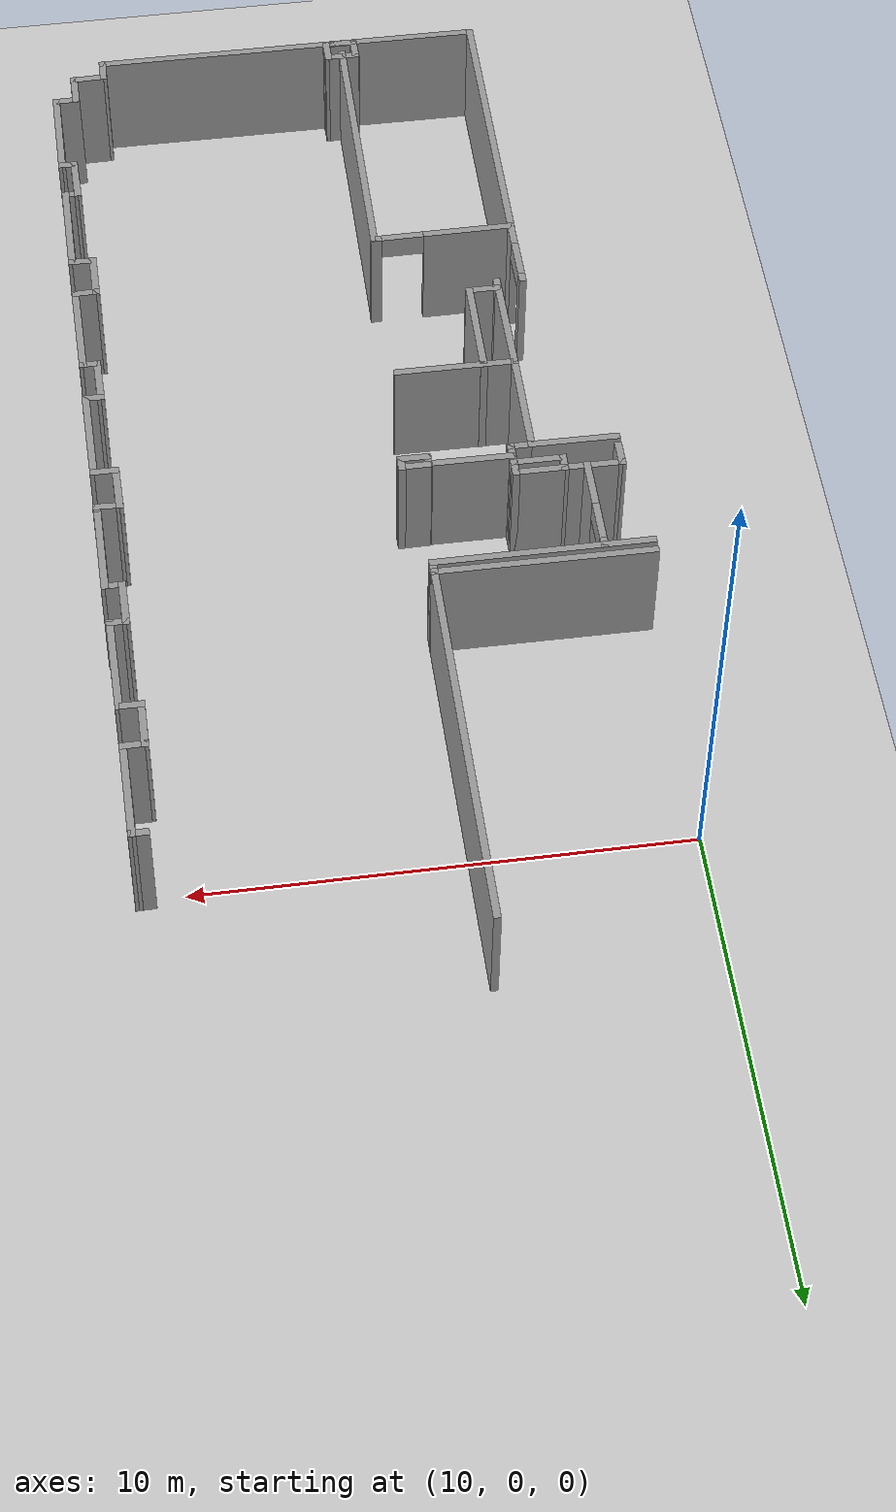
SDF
<sdf version="1.6">
 <world name="default">
  <model name="ground_plane">
   <static>1</static>
   <link name="link">
    <collision name="collision">
     <geometry><plane><normal>0 0 1</normal><size>100 100</size></plane></geometry>
     <surface>
      <contact><collide_bitmask>65535</collide_bitmask></contact>
      <friction><ode><mu>100</mu><mu2>50</mu2></ode></friction>
     </surface>
    </collision>
    <visual name="visual">
     <cast_shadows>0</cast_shadows>
     <geometry><plane><normal>0 0 1</normal><size>100 100</size></plane></geometry>
     <material>
      <script><uri>file://media/materials/scripts/gazebo.material</uri><name>Gazebo/Grey</name></script>
     </material>
    </visual>
   </link>
  </model>
  <model name="Myhal_5th_floor">
   <pose>-0.342666 0.4433 0 0 -0 0</pose>
   <link name="Wall_176">
    <collision name="Wall_176_Collision">
     <geometry><box><size>0.41301 0.15 2.5</size></box></geometry>
     <pose>0 0 1.25 0 -0 0</pose>
    </collision>
    <visual name="Wall_176_Visual">
     <pose>0 0 1.25 0 -0 0</pose>
     <geometry><box><size>0.41301 0.15 2.5</size></box></geometry>
     <material>
      <script><uri>file://media/materials/scripts/gazebo.material</uri><name>Gazebo/Grey</name></script>
      <ambient>1 1 1 1</ambient>
     </material>
     <meta><layer>0</layer></meta>
    </visual>
    <pose>21.1258 -0.328473 0 0 -0 0.019228</pose>
   </link>
   <link name="Wall_177">
    <collision name="Wall_177_Collision">
     <geometry><box><size>2.17279 0.15 2.5</size></box></geometry>
     <pose>0 0 1.25 0 -0 0</pose>
    </collision>
    <visual name="Wall_177_Visual">
     <pose>0 0 1.25 0 -0 0</pose>
     <geometry><box><size>2.17279 0.15 2.5</size></box></geometry>
     <material>
      <script><uri>file://media/materials/scripts/gazebo.material</uri><name>Gazebo/Grey</name></script>
      <ambient>1 1 1 1</ambient>
     </material>
     <meta><layer>0</layer></meta>
    </visual>
    <pose>21.2547 -1.33733 0 0 -0 -1.5733</pose>
   </link>
   <link name="Wall_178">
    <collision name="Wall_178_Collision">
     <geometry><box><size>0.569757 0.15 2.5</size></box></geometry>
     <pose>0 0 1.25 0 -0 0</pose>
    </collision>
    <visual name="Wall_178_Visual">
     <pose>0 0 1.25 0 -0 0</pose>
     <geometry><box><size>0.569757 0.15 2.5</size></box></geometry>
     <material>
      <script><uri>file://media/materials/scripts/gazebo.material</uri><name>Gazebo/Grey</name></script>
      <ambient>1 1 1 1</ambient>
     </material>
     <meta><layer>0</layer></meta>
    </visual>
    <pose>21.0423 -2.35125 0 0 -0 -3.12954</pose>
   </link>
   <link name="Wall_179">
    <collision name="Wall_179_Collision">
     <geometry><box><size>1.09065 0.15 2.5</size></box></geometry>
     <pose>0 0 1.25 0 -0 0</pose>
    </collision>
    <visual name="Wall_179_Visual">
     <pose>0 0 1.25 0 -0 0</pose>
     <geometry><box><size>1.09065 0.15 2.5</size></box></geometry>
     <material>
      <script><uri>file://media/materials/scripts/gazebo.material</uri><name>Gazebo/Grey</name></script>
      <ambient>1 1 1 1</ambient>
     </material>
     <meta><layer>0</layer></meta>
    </visual>
    <pose>20.8274 -2.82408 0 0 -0 -1.58155</pose>
   </link>
   <link name="Wall_180">
    <collision name="Wall_180_Collision">
     <geometry><box><size>0.579841 0.15 2.5</size></box></geometry>
     <pose>0 0 1.25 0 -0 0</pose>
    </collision>
    <visual name="Wall_180_Visual">
     <pose>0 0 1.25 0 -0 0</pose>
     <geometry><box><size>0.579841 0.15 2.5</size></box></geometry>
     <material>
      <script><uri>file://media/materials/scripts/gazebo.material</uri><name>Gazebo/Grey</name></script>
      <ambient>1 1 1 1</ambient>
     </material>
     <meta><layer>0</layer></meta>
    </visual>
    <pose>21.0373 -3.29437 0 0 -0 0</pose>
   </link>
   <link name="Wall_182">
    <collision name="Wall_182_Collision">
     <geometry><box><size>2.19708 0.15 2.5</size></box></geometry>
     <pose>0 0 1.25 0 -0 0</pose>
    </collision>
    <visual name="Wall_182_Visual">
     <pose>0 0 1.25 0 -0 0</pose>
     <geometry><box><size>2.19708 0.15 2.5</size></box></geometry>
     <material>
      <script><uri>file://media/materials/scripts/gazebo.material</uri><name>Gazebo/Grey</name></script>
      <ambient>1 1 1 1</ambient>
     </material>
     <meta><layer>0</layer></meta>
    </visual>
    <pose>21.2565 -4.3179 0 0 -0 -1.56657</pose>
   </link>
   <link name="Wall_183">
    <collision name="Wall_183_Collision">
     <geometry><box><size>0.472232 0.15 2.5</size></box></geometry>
     <pose>0 0 1.25 0 -0 0</pose>
    </collision>
    <visual name="Wall_183_Visual">
     <pose>0 0 1.25 0 -0 0</pose>
     <geometry><box><size>0.472232 0.15 2.5</size></box></geometry>
     <material>
      <script><uri>file://media/materials/scripts/gazebo.material</uri><name>Gazebo/Grey</name></script>
      <ambient>1 1 1 1</ambient>
     </material>
     <meta><layer>0</layer></meta>
    </visual>
    <pose>21.0997 -5.33688 0 0 -0 3.11332</pose>
   </link>
   <link name="Wall_184">
    <collision name="Wall_184_Collision">
     <geometry><box><size>1.07733 0.15 2.5</size></box></geometry>
     <pose>0 0 1.25 0 -0 0</pose>
    </collision>
    <visual name="Wall_184_Visual">
     <pose>0 0 1.25 0 -0 0</pose>
     <geometry><box><size>1.07733 0.15 2.5</size></box></geometry>
     <material>
      <script><uri>file://media/materials/scripts/gazebo.material</uri><name>Gazebo/Grey</name></script>
      <ambient>1 1 1 1</ambient>
     </material>
     <meta><layer>0</layer></meta>
    </visual>
    <pose>20.9395 -5.79584 0 0 -0 -1.56903</pose>
   </link>
   <link name="Wall_185">
    <collision name="Wall_185_Collision">
     <geometry><box><size>0.492248 0.15 2.5</size></box></geometry>
     <pose>0 0 1.25 0 -0 0</pose>
    </collision>
    <visual name="Wall_185_Visual">
     <pose>0 0 1.25 0 -0 0</pose>
     <geometry><box><size>0.492248 0.15 2.5</size></box></geometry>
     <material>
      <script><uri>file://media/materials/scripts/gazebo.material</uri><name>Gazebo/Grey</name></script>
      <ambient>1 1 1 1</ambient>
     </material>
     <meta><layer>0</layer></meta>
    </visual>
    <pose>21.1114 -6.26108 0 0 -0 -0.010061</pose>
   </link>
   <link name="Wall_187">
    <collision name="Wall_187_Collision">
     <geometry><box><size>1.99581 0.15 2.5</size></box></geometry>
     <pose>0 0 1.25 0 -0 0</pose>
    </collision>
    <visual name="Wall_187_Visual">
     <pose>0 0 1.25 0 -0 0</pose>
     <geometry><box><size>1.99581 0.15 2.5</size></box></geometry>
     <material>
      <script><uri>file://media/materials/scripts/gazebo.material</uri><name>Gazebo/Grey</name></script>
      <ambient>1 1 1 1</ambient>
     </material>
     <meta><layer>0</layer></meta>
    </visual>
    <pose>21.28 -7.18569 0 0 -0 -1.57354</pose>
   </link>
   <link name="Wall_188">
    <collision name="Wall_188_Collision">
     <geometry><box><size>0.352341 0.15 2.5</size></box></geometry>
     <pose>0 0 1.25 0 -0 0</pose>
    </collision>
    <visual name="Wall_188_Visual">
     <pose>0 0 1.25 0 -0 0</pose>
     <geometry><box><size>0.352341 0.15 2.5</size></box></geometry>
     <material>
      <script><uri>file://media/materials/scripts/gazebo.material</uri><name>Gazebo/Grey</name></script>
      <ambient>1 1 1 1</ambient>
     </material>
     <meta><layer>0</layer></meta>
    </visual>
    <pose>21.28 -8.20973 0 0 -0 -1.5458</pose>
   </link>
   <link name="Wall_189">
    <collision name="Wall_189_Collision">
     <geometry><box><size>0.610876 0.15 2.5</size></box></geometry>
     <pose>0 0 1.25 0 -0 0</pose>
    </collision>
    <visual name="Wall_189_Visual">
     <pose>0 0 1.25 0 -0 0</pose>
     <geometry><box><size>0.610876 0.15 2.5</size></box></geometry>
     <material>
      <script><uri>file://media/materials/scripts/gazebo.material</uri><name>Gazebo/Grey</name></script>
      <ambient>1 1 1 1</ambient>
     </material>
     <meta><layer>0</layer></meta>
    </visual>
    <pose>21.0524 -8.30328 0 0 -0 3.10864</pose>
   </link>
   <link name="Wall_190">
    <collision name="Wall_190_Collision">
     <geometry><box><size>1.08049 0.15 2.5</size></box></geometry>
     <pose>0 0 1.25 0 -0 0</pose>
    </collision>
    <visual name="Wall_190_Visual">
     <pose>0 0 1.25 0 -0 0</pose>
     <geometry><box><size>1.08049 0.15 2.5</size></box></geometry>
     <material>
      <script><uri>file://media/materials/scripts/gazebo.material</uri><name>Gazebo/Grey</name></script>
      <ambient>1 1 1 1</ambient>
     </material>
     <meta><layer>0</layer></meta>
    </visual>
    <pose>20.8249 -8.76093 0 0 -0 -1.56536</pose>
   </link>
   <link name="Wall_191">
    <collision name="Wall_191_Collision">
     <geometry><box><size>0.595011 0.15 2.5</size></box></geometry>
     <pose>0 0 1.25 0 -0 0</pose>
    </collision>
    <visual name="Wall_191_Visual">
     <pose>0 0 1.25 0 -0 0</pose>
     <geometry><box><size>0.595011 0.15 2.5</size></box></geometry>
     <material>
      <script><uri>file://media/materials/scripts/gazebo.material</uri><name>Gazebo/Grey</name></script>
      <ambient>1 1 1 1</ambient>
     </material>
     <meta><layer>0</layer></meta>
    </visual>
    <pose>21.0499 -9.22617 0 0 -0 0</pose>
   </link>
   <link name="Wall_193">
    <collision name="Wall_193_Collision">
     <geometry><box><size>2.16773 0.15 2.5</size></box></geometry>
     <pose>0 0 1.25 0 -0 0</pose>
    </collision>
    <visual name="Wall_193_Visual">
     <pose>0 0 1.25 0 -0 0</pose>
     <geometry><box><size>2.16773 0.15 2.5</size></box></geometry>
     <material>
      <script><uri>file://media/materials/scripts/gazebo.material</uri><name>Gazebo/Grey</name></script>
      <ambient>1 1 1 1</ambient>
     </material>
     <meta><layer>0</layer></meta>
    </visual>
    <pose>21.2749 -10.235 0 0 -0 -1.56829</pose>
   </link>
   <link name="Wall_194">
    <collision name="Wall_194_Collision">
     <geometry><box><size>0.463572 0.15 2.5</size></box></geometry>
     <pose>0 0 1.25 0 -0 0</pose>
    </collision>
    <visual name="Wall_194_Visual">
     <pose>0 0 1.25 0 -0 0</pose>
     <geometry><box><size>0.463572 0.15 2.5</size></box></geometry>
     <material>
      <script><uri>file://media/materials/scripts/gazebo.material</uri><name>Gazebo/Grey</name></script>
      <ambient>1 1 1 1</ambient>
     </material>
     <meta><layer>0</layer></meta>
    </visual>
    <pose>21.1207 -11.2414 0 0 -0 3.12547</pose>
   </link>
   <link name="Wall_195">
    <collision name="Wall_195_Collision">
     <geometry><box><size>1.08555 0.15 2.5</size></box></geometry>
     <pose>0 0 1.25 0 -0 0</pose>
    </collision>
    <visual name="Wall_195_Visual">
     <pose>0 0 1.25 0 -0 0</pose>
     <geometry><box><size>1.08555 0.15 2.5</size></box></geometry>
     <material>
      <script><uri>file://media/materials/scripts/gazebo.material</uri><name>Gazebo/Grey</name></script>
      <ambient>1 1 1 1</ambient>
     </material>
     <meta><layer>0</layer></meta>
    </visual>
    <pose>20.9665 -11.7066 0 0 -0 -1.56539</pose>
   </link>
   <link name="Wall_197">
    <collision name="Wall_197_Collision">
     <geometry><box><size>0.443347 0.15 2.5</size></box></geometry>
     <pose>0 0 1.25 0 -0 0</pose>
    </collision>
    <visual name="Wall_197_Visual">
     <pose>0 0 1.25 0 -0 0</pose>
     <geometry><box><size>0.443347 0.15 2.5</size></box></geometry>
     <material>
      <script><uri>file://media/materials/scripts/gazebo.material</uri><name>Gazebo/Grey</name></script>
      <ambient>1 1 1 1</ambient>
     </material>
     <meta><layer>0</layer></meta>
    </visual>
    <pose>21.1156 -12.182 0 0 -0 -0.01724</pose>
   </link>
   <link name="Wall_200">
    <collision name="Wall_200_Collision">
     <geometry><box><size>2.18308 0.15 2.5</size></box></geometry>
     <pose>0 0 1.25 0 -0 0</pose>
    </collision>
    <visual name="Wall_200_Visual">
     <pose>0 0 1.25 0 -0 0</pose>
     <geometry><box><size>2.18308 0.15 2.5</size></box></geometry>
     <material>
      <script><uri>file://media/materials/scripts/gazebo.material</uri><name>Gazebo/Grey</name></script>
      <ambient>1 1 1 1</ambient>
     </material>
     <meta><layer>0</layer></meta>
    </visual>
    <pose>21.2649 -13.201 0 0 -0 -1.5682</pose>
   </link>
   <link name="Wall_201">
    <collision name="Wall_201_Collision">
     <geometry><box><size>0.586707 0.15 2.5</size></box></geometry>
     <pose>0 0 1.25 0 -0 0</pose>
    </collision>
    <visual name="Wall_201_Visual">
     <pose>0 0 1.25 0 -0 0</pose>
     <geometry><box><size>0.586707 0.15 2.5</size></box></geometry>
     <material>
      <script><uri>file://media/materials/scripts/gazebo.material</uri><name>Gazebo/Grey</name></script>
      <ambient>1 1 1 1</ambient>
     </material>
     <meta><layer>0</layer></meta>
    </visual>
    <pose>21.0493 -14.2221 0 0 -0 -3.12062</pose>
   </link>
   <link name="Wall_202">
    <collision name="Wall_202_Collision">
     <geometry><box><size>1.07194 0.15 2.5</size></box></geometry>
     <pose>0 0 1.25 0 -0 0</pose>
    </collision>
    <visual name="Wall_202_Visual">
     <pose>0 0 1.25 0 -0 0</pose>
     <geometry><box><size>1.07194 0.15 2.5</size></box></geometry>
     <material>
      <script><uri>file://media/materials/scripts/gazebo.material</uri><name>Gazebo/Grey</name></script>
      <ambient>1 1 1 1</ambient>
     </material>
     <meta><layer>0</layer></meta>
    </visual>
    <pose>20.828 -14.6877 0 0 -0 -1.57742</pose>
   </link>
   <link name="Wall_203">
    <collision name="Wall_203_Collision">
     <geometry><box><size>0.592476 0.15 2.5</size></box></geometry>
     <pose>0 0 1.25 0 -0 0</pose>
    </collision>
    <visual name="Wall_203_Visual">
     <pose>0 0 1.25 0 -0 0</pose>
     <geometry><box><size>0.592476 0.15 2.5</size></box></geometry>
     <material>
      <script><uri>file://media/materials/scripts/gazebo.material</uri><name>Gazebo/Grey</name></script>
      <ambient>1 1 1 1</ambient>
     </material>
     <meta><layer>0</layer></meta>
    </visual>
    <pose>21.0461 -15.1508 0 0 -0 -0.009693</pose>
   </link>
   <link name="Wall_205">
    <collision name="Wall_205_Collision">
     <geometry><box><size>2.18797 0.15 2.5</size></box></geometry>
     <pose>0 0 1.25 0 -0 0</pose>
    </collision>
    <visual name="Wall_205_Visual">
     <pose>0 0 1.25 0 -0 0</pose>
     <geometry><box><size>2.18797 0.15 2.5</size></box></geometry>
     <material>
      <script><uri>file://media/materials/scripts/gazebo.material</uri><name>Gazebo/Grey</name></script>
      <ambient>1 1 1 1</ambient>
     </material>
     <meta><layer>0</layer></meta>
    </visual>
    <pose>21.2623 -16.1719 0 0 -0 -1.57576</pose>
   </link>
   <link name="Wall_206">
    <collision name="Wall_206_Collision">
     <geometry><box><size>0.412961 0.15 2.5</size></box></geometry>
     <pose>0 0 1.25 0 -0 0</pose>
    </collision>
    <visual name="Wall_206_Visual">
     <pose>0 0 1.25 0 -0 0</pose>
     <geometry><box><size>0.412961 0.15 2.5</size></box></geometry>
     <material>
      <script><uri>file://media/materials/scripts/gazebo.material</uri><name>Gazebo/Grey</name></script>
      <ambient>1 1 1 1</ambient>
     </material>
     <meta><layer>0</layer></meta>
    </visual>
    <pose>21.1258 -17.1909 0 0 -0 3.14159</pose>
   </link>
   <link name="Wall_207">
    <collision name="Wall_207_Collision">
     <geometry><box><size>1.06031 0.15 2.5</size></box></geometry>
     <pose>0 0 1.25 0 -0 0</pose>
    </collision>
    <visual name="Wall_207_Visual">
     <pose>0 0 1.25 0 -0 0</pose>
     <geometry><box><size>1.06031 0.15 2.5</size></box></geometry>
     <material>
      <script><uri>file://media/materials/scripts/gazebo.material</uri><name>Gazebo/Grey</name></script>
      <ambient>1 1 1 1</ambient>
     </material>
     <meta><layer>0</layer></meta>
    </visual>
    <pose>20.9993 -17.646 0 0 -0 -1.55969</pose>
   </link>
   <link name="Wall_208">
    <collision name="Wall_208_Collision">
     <geometry><box><size>0.412961 0.15 2.5</size></box></geometry>
     <pose>0 0 1.25 0 -0 0</pose>
    </collision>
    <visual name="Wall_208_Visual">
     <pose>0 0 1.25 0 -0 0</pose>
     <geometry><box><size>0.412961 0.15 2.5</size></box></geometry>
     <material>
      <script><uri>file://media/materials/scripts/gazebo.material</uri><name>Gazebo/Grey</name></script>
      <ambient>1 1 1 1</ambient>
     </material>
     <meta><layer>0</layer></meta>
    </visual>
    <pose>21.1359 -18.1011 0 0 -0 0</pose>
   </link>
   <link name="Wall_213">
    <collision name="Wall_213_Collision">
     <geometry><box><size>2.16321 0.15 2.5</size></box></geometry>
     <pose>0 0 1.25 0 -0 0</pose>
    </collision>
    <visual name="Wall_213_Visual">
     <pose>0 0 1.25 0 -0 0</pose>
     <geometry><box><size>2.16321 0.15 2.5</size></box></geometry>
     <material>
      <script><uri>file://media/materials/scripts/gazebo.material</uri><name>Gazebo/Grey</name></script>
      <ambient>1 1 1 1</ambient>
     </material>
     <meta><layer>0</layer></meta>
    </visual>
    <pose>21.2582 -19.1077 0 0 -0 -1.57988</pose>
   </link>
   <link name="Wall_214">
    <collision name="Wall_214_Collision">
     <geometry><box><size>0.586875 0.15 2.5</size></box></geometry>
     <pose>0 0 1.25 0 -0 0</pose>
    </collision>
    <visual name="Wall_214_Visual">
     <pose>0 0 1.25 0 -0 0</pose>
     <geometry><box><size>0.586875 0.15 2.5</size></box></geometry>
     <material>
      <script><uri>file://media/materials/scripts/gazebo.material</uri><name>Gazebo/Grey</name></script>
      <ambient>1 1 1 1</ambient>
     </material>
     <meta><layer>0</layer></meta>
    </visual>
    <pose>21.0306 -20.1165 0 0 -0 -3.13108</pose>
   </link>
   <link name="Wall_215">
    <collision name="Wall_215_Collision">
     <geometry><box><size>0.792232 0.15 2.5</size></box></geometry>
     <pose>0 0 1.25 0 -0 0</pose>
    </collision>
    <visual name="Wall_215_Visual">
     <pose>0 0 1.25 0 -0 0</pose>
     <geometry><box><size>0.792232 0.15 2.5</size></box></geometry>
     <material>
      <script><uri>file://media/materials/scripts/gazebo.material</uri><name>Gazebo/Grey</name></script>
      <ambient>1 1 1 1</ambient>
     </material>
     <meta><layer>0</layer></meta>
    </visual>
    <pose>20.8122 -20.445 0 0 -0 -1.5708</pose>
   </link>
   <link name="Wall_216">
    <collision name="Wall_216_Collision">
     <geometry><box><size>0.807481 0.15 2.5</size></box></geometry>
     <pose>0 0 1.25 0 -0 0</pose>
    </collision>
    <visual name="Wall_216_Visual">
     <pose>0 0 1.25 0 -0 0</pose>
     <geometry><box><size>0.807481 0.15 2.5</size></box></geometry>
     <material>
      <script><uri>file://media/materials/scripts/gazebo.material</uri><name>Gazebo/Grey</name></script>
      <ambient>1 1 1 1</ambient>
     </material>
     <meta><layer>0</layer></meta>
    </visual>
    <pose>20.4835 -20.7661 0 0 -0 -3.12621</pose>
   </link>
   <link name="Wall_217">
    <collision name="Wall_217_Collision">
     <geometry><box><size>0.561005 0.15 2.5</size></box></geometry>
     <pose>0 0 1.25 0 -0 0</pose>
    </collision>
    <visual name="Wall_217_Visual">
     <pose>0 0 1.25 0 -0 0</pose>
     <geometry><box><size>0.561005 0.15 2.5</size></box></geometry>
     <material>
      <script><uri>file://media/materials/scripts/gazebo.material</uri><name>Gazebo/Grey</name></script>
      <ambient>1 1 1 1</ambient>
     </material>
     <meta><layer>0</layer></meta>
    </visual>
    <pose>20.1492 -20.9766 0 0 -0 -1.59832</pose>
   </link>
   <link name="Wall_221">
    <collision name="Wall_221_Collision">
     <geometry><box><size>5.98789 0.15 2.5</size></box></geometry>
     <pose>0 0 1.25 0 -0 0</pose>
    </collision>
    <visual name="Wall_221_Visual">
     <pose>0 0 1.25 0 -0 0</pose>
     <geometry><box><size>5.98789 0.15 2.5</size></box></geometry>
     <material>
      <script><uri>file://media/materials/scripts/gazebo.material</uri><name>Gazebo/Grey</name></script>
      <ambient>1 1 1 1</ambient>
     </material>
     <meta><layer>0</layer></meta>
    </visual>
    <pose>14.8096 -17.9095 0 0 -0 -1.57624</pose>
   </link>
   <link name="Wall_229">
    <collision name="Wall_229_Collision">
     <geometry><box><size>0.735565 0.15 2.5</size></box></geometry>
     <pose>0 0 1.25 0 -0 0</pose>
    </collision>
    <visual name="Wall_229_Visual">
     <pose>0 0 1.25 0 -0 0</pose>
     <geometry><box><size>0.735565 0.15 2.5</size></box></geometry>
     <material>
      <script><uri>file://media/materials/scripts/gazebo.material</uri><name>Gazebo/Grey</name></script>
      <ambient>1 1 1 1</ambient>
     </material>
     <meta><layer>0</layer></meta>
    </visual>
    <pose>14.805 -21.1763 0 0 -0 -0.00974</pose>
   </link>
   <link name="Wall_234">
    <collision name="Wall_234_Collision">
     <geometry><box><size>5.20354 0.15 2.5</size></box></geometry>
     <pose>0 0 1.25 0 -0 0</pose>
    </collision>
    <visual name="Wall_234_Visual">
     <pose>0 0 1.25 0 -0 0</pose>
     <geometry><box><size>5.20354 0.15 2.5</size></box></geometry>
     <material>
      <script><uri>file://media/materials/scripts/gazebo.material</uri><name>Gazebo/Grey</name></script>
      <ambient>1 1 1 1</ambient>
     </material>
     <meta><layer>0</layer></meta>
    </visual>
    <pose>17.6167 -21.1845 0 0 -0 -0.000995</pose>
   </link>
   <link name="Wall_236">
    <collision name="Wall_236_Collision">
     <geometry><box><size>3.38329 0.15 2.5</size></box></geometry>
     <pose>0 0 1.25 0 -0 0</pose>
    </collision>
    <visual name="Wall_236_Visual">
     <pose>0 0 1.25 0 -0 0</pose>
     <geometry><box><size>3.38329 0.15 2.5</size></box></geometry>
     <material>
      <script><uri>file://media/materials/scripts/gazebo.material</uri><name>Gazebo/Grey</name></script>
      <ambient>1 1 1 1</ambient>
     </material>
     <meta><layer>0</layer></meta>
    </visual>
    <pose>13.4733 -21.177 0 0 -0 3.13848</pose>
   </link>
   <link name="Wall_238">
    <collision name="Wall_238_Collision">
     <geometry><box><size>6.30944 0.15 2.5</size></box></geometry>
     <pose>0 0 1.25 0 -0 0</pose>
    </collision>
    <visual name="Wall_238_Visual">
     <pose>0 0 1.25 0 -0 0</pose>
     <geometry><box><size>6.30944 0.15 2.5</size></box></geometry>
     <material>
      <script><uri>file://media/materials/scripts/gazebo.material</uri><name>Gazebo/Grey</name></script>
      <ambient>1 1 1 1</ambient>
     </material>
     <meta><layer>0</layer></meta>
    </visual>
    <pose>11.8618 -18.0923 0 0 -0 1.56913</pose>
   </link>
   <link name="Wall_239">
    <pose>13.3529 -14.9949 0 0 -0 0.007421</pose>
    <visual name="Wall_239_Visual_0">
     <pose>-0.571247 0 1.25 0 -0 0</pose>
     <geometry><box><size>1.96615 0.15 2.5</size></box></geometry>
     <material>
      <script><uri>file://media/materials/scripts/gazebo.material</uri><name>Gazebo/Grey</name></script>
      <ambient>1 1 1 1</ambient>
     </material>
     <meta><layer>0</layer></meta>
    </visual>
    <collision name="Wall_239_Collision_0">
     <geometry><box><size>1.96615 0.15 2.5</size></box></geometry>
     <pose>-0.571247 0 1.25 0 -0 0</pose>
    </collision>
    <visual name="Wall_239_Visual_1">
     <pose>1.43308 0 1.25 0 -0 0</pose>
     <geometry><box><size>0.242494 0.15 2.5</size></box></geometry>
     <material>
      <script><uri>file://media/materials/scripts/gazebo.material</uri><name>Gazebo/Grey</name></script>
      <ambient>1 1 1 1</ambient>
     </material>
     <meta><layer>0</layer></meta>
    </visual>
    <collision name="Wall_239_Collision_1">
     <geometry><box><size>0.242494 0.15 2.5</size></box></geometry>
     <pose>1.43308 0 1.25 0 -0 0</pose>
    </collision>
    <visual name="Wall_239_Visual_2">
     <pose>0.861829 0 2.25 0 -0 0</pose>
     <geometry><box><size>0.9 0.15 0.5</size></box></geometry>
     <material>
      <script><uri>file://media/materials/scripts/gazebo.material</uri><name>Gazebo/Grey</name></script>
      <ambient>1 1 1 1</ambient>
     </material>
     <meta><layer>0</layer></meta>
    </visual>
    <collision name="Wall_239_Collision_2">
     <geometry><box><size>0.9 0.15 0.5</size></box></geometry>
     <pose>0.861829 0 2.25 0 -0 0</pose>
    </collision>
   </link>
   <link name="Wall_276">
    <collision name="Wall_276_Collision">
     <geometry><box><size>0.602555 0.15 2.5</size></box></geometry>
     <pose>0 0 1.25 0 -0 0</pose>
    </collision>
    <visual name="Wall_276_Visual">
     <pose>0 0 1.25 0 -0 0</pose>
     <geometry><box><size>0.602555 0.15 2.5</size></box></geometry>
     <material>
      <script><uri>file://media/materials/scripts/gazebo.material</uri><name>Gazebo/Grey</name></script>
      <ambient>1 1 1 1</ambient>
     </material>
     <meta><layer>0</layer></meta>
    </visual>
    <pose>10.6578 -8.33297 0 0 -0 1.5708</pose>
   </link>
   <link name="Wall_277">
    <collision name="Wall_277_Collision">
     <geometry><box><size>1.32163 0.15 2.5</size></box></geometry>
     <pose>0 0 1.25 0 -0 0</pose>
    </collision>
    <visual name="Wall_277_Visual">
     <pose>0 0 1.25 0 -0 0</pose>
     <geometry><box><size>1.32163 0.15 2.5</size></box></geometry>
     <material>
      <script><uri>file://media/materials/scripts/gazebo.material</uri><name>Gazebo/Grey</name></script>
      <ambient>1 1 1 1</ambient>
     </material>
     <meta><layer>0</layer></meta>
    </visual>
    <pose>11.2436 -8.10921 0 0 -0 -0.004292</pose>
   </link>
   <link name="Wall_278">
    <collision name="Wall_278_Collision">
     <geometry><box><size>1.15066 0.15 2.5</size></box></geometry>
     <pose>0 0 1.25 0 -0 0</pose>
    </collision>
    <visual name="Wall_278_Visual">
     <pose>0 0 1.25 0 -0 0</pose>
     <geometry><box><size>1.15066 0.15 2.5</size></box></geometry>
     <material>
      <script><uri>file://media/materials/scripts/gazebo.material</uri><name>Gazebo/Grey</name></script>
      <ambient>1 1 1 1</ambient>
     </material>
     <meta><layer>0</layer></meta>
    </visual>
    <pose>12.3298 -8.11172 0 0 -0 0</pose>
   </link>
   <link name="Wall_279">
    <collision name="Wall_279_Collision">
     <geometry><box><size>0.426562 0.15 2.5</size></box></geometry>
     <pose>0 0 1.25 0 -0 0</pose>
    </collision>
    <visual name="Wall_279_Visual">
     <pose>0 0 1.25 0 -0 0</pose>
     <geometry><box><size>0.426562 0.15 2.5</size></box></geometry>
     <material>
      <script><uri>file://media/materials/scripts/gazebo.material</uri><name>Gazebo/Grey</name></script>
      <ambient>1 1 1 1</ambient>
     </material>
     <meta><layer>0</layer></meta>
    </visual>
    <pose>12.8301 -8.25 0 0 -0 -1.5708</pose>
   </link>
   <link name="Wall_280">
    <collision name="Wall_280_Collision">
     <geometry><box><size>0.320965 0.15 2.5</size></box></geometry>
     <pose>0 0 1.25 0 -0 0</pose>
    </collision>
    <visual name="Wall_280_Visual">
     <pose>0 0 1.25 0 -0 0</pose>
     <geometry><box><size>0.320965 0.15 2.5</size></box></geometry>
     <material>
      <script><uri>file://media/materials/scripts/gazebo.material</uri><name>Gazebo/Grey</name></script>
      <ambient>1 1 1 1</ambient>
     </material>
     <meta><layer>0</layer></meta>
    </visual>
    <pose>12.8301 -8.47377 0 0 -0 -1.5708</pose>
   </link>
   <link name="Wall_281">
    <collision name="Wall_281_Collision">
     <geometry><box><size>0.396391 0.15 2.5</size></box></geometry>
     <pose>0 0 1.25 0 -0 0</pose>
    </collision>
    <visual name="Wall_281_Visual">
     <pose>0 0 1.25 0 -0 0</pose>
     <geometry><box><size>0.396391 0.15 2.5</size></box></geometry>
     <material>
      <script><uri>file://media/materials/scripts/gazebo.material</uri><name>Gazebo/Grey</name></script>
      <ambient>1 1 1 1</ambient>
     </material>
     <meta><layer>0</layer></meta>
    </visual>
    <pose>12.8301 -8.68244 0 0 -0 -1.5708</pose>
   </link>
   <link name="Wall_282">
    <collision name="Wall_282_Collision">
     <geometry><box><size>0.577532 0.15 2.5</size></box></geometry>
     <pose>0 0 1.25 0 -0 0</pose>
    </collision>
    <visual name="Wall_282_Visual">
     <pose>0 0 1.25 0 -0 0</pose>
     <geometry><box><size>0.577532 0.15 2.5</size></box></geometry>
     <material>
      <script><uri>file://media/materials/scripts/gazebo.material</uri><name>Gazebo/Grey</name></script>
      <ambient>1 1 1 1</ambient>
     </material>
     <meta><layer>0</layer></meta>
    </visual>
    <pose>12.6164 -8.80815 0 0 -0 -3.12983</pose>
   </link>
   <link name="Wall_283">
    <collision name="Wall_283_Collision">
     <geometry><box><size>1.89488 0.15 2.5</size></box></geometry>
     <pose>0 0 1.25 0 -0 0</pose>
    </collision>
    <visual name="Wall_283_Visual">
     <pose>0 0 1.25 0 -0 0</pose>
     <geometry><box><size>1.89488 0.15 2.5</size></box></geometry>
     <material>
      <script><uri>file://media/materials/scripts/gazebo.material</uri><name>Gazebo/Grey</name></script>
      <ambient>1 1 1 1</ambient>
     </material>
     <meta><layer>0</layer></meta>
    </visual>
    <pose>11.5302 -8.80564 0 0 -0 3.13583</pose>
   </link>
   <link name="Wall_286">
    <collision name="Wall_286_Collision">
     <geometry><box><size>0.42158 0.15 2.5</size></box></geometry>
     <pose>0 0 1.25 0 -0 0</pose>
    </collision>
    <visual name="Wall_286_Visual">
     <pose>0 0 1.25 0 -0 0</pose>
     <geometry><box><size>0.42158 0.15 2.5</size></box></geometry>
     <material>
      <script><uri>file://media/materials/scripts/gazebo.material</uri><name>Gazebo/Grey</name></script>
      <ambient>1 1 1 1</ambient>
     </material>
     <meta><layer>0</layer></meta>
    </visual>
    <pose>11.8269 -8.24749 0 0 -0 -1.58931</pose>
   </link>
   <link name="Wall_287">
    <collision name="Wall_287_Collision">
     <geometry><box><size>1.15599 0.15 2.5</size></box></geometry>
     <pose>0 0 1.25 0 -0 0</pose>
    </collision>
    <visual name="Wall_287_Visual">
     <pose>0 0 1.25 0 -0 0</pose>
     <geometry><box><size>1.15599 0.15 2.5</size></box></geometry>
     <material>
      <script><uri>file://media/materials/scripts/gazebo.material</uri><name>Gazebo/Grey</name></script>
      <ambient>1 1 1 1</ambient>
     </material>
     <meta><layer>0</layer></meta>
    </visual>
    <pose>12.3272 -8.38326 0 0 -0 0</pose>
   </link>
   <link name="Wall_292">
    <collision name="Wall_292_Collision">
     <geometry><box><size>1.85777 0.15 2.5</size></box></geometry>
     <pose>0 0 1.25 0 -0 0</pose>
    </collision>
    <visual name="Wall_292_Visual">
     <pose>0 0 1.25 0 -0 0</pose>
     <geometry><box><size>1.85777 0.15 2.5</size></box></geometry>
     <material>
      <script><uri>file://media/materials/scripts/gazebo.material</uri><name>Gazebo/Grey</name></script>
      <ambient>1 1 1 1</ambient>
     </material>
     <meta><layer>0</layer></meta>
    </visual>
    <pose>13.694 -8.56441 0 0 -0 -0.00505</pose>
   </link>
   <link name="Wall_294">
    <collision name="Wall_294_Collision">
     <geometry><box><size>0.342968 0.15 2.5</size></box></geometry>
     <pose>0 0 1.25 0 -0 0</pose>
    </collision>
    <visual name="Wall_294_Visual">
     <pose>0 0 1.25 0 -0 0</pose>
     <geometry><box><size>0.342968 0.15 2.5</size></box></geometry>
     <material>
      <script><uri>file://media/materials/scripts/gazebo.material</uri><name>Gazebo/Grey</name></script>
      <ambient>1 1 1 1</ambient>
     </material>
     <meta><layer>0</layer></meta>
    </visual>
    <pose>14.5464 -8.66503 0 0 -0 -1.58572</pose>
   </link>
   <link name="Wall_295">
    <collision name="Wall_295_Collision">
     <geometry><box><size>0.696258 0.15 2.5</size></box></geometry>
     <pose>0 0 1.25 0 -0 0</pose>
    </collision>
    <visual name="Wall_295_Visual">
     <pose>0 0 1.25 0 -0 0</pose>
     <geometry><box><size>0.696258 0.15 2.5</size></box></geometry>
     <material>
      <script><uri>file://media/materials/scripts/gazebo.material</uri><name>Gazebo/Grey</name></script>
      <ambient>1 1 1 1</ambient>
     </material>
     <meta><layer>0</layer></meta>
    </visual>
    <pose>14.8181 -8.76278 0 0 -0 -0.005263</pose>
   </link>
   <link name="Wall_296">
    <collision name="Wall_296_Collision">
     <geometry><box><size>0.373527 0.15 2.5</size></box></geometry>
     <pose>0 0 1.25 0 -0 0</pose>
    </collision>
    <visual name="Wall_296_Visual">
     <pose>0 0 1.25 0 -0 0</pose>
     <geometry><box><size>0.373527 0.15 2.5</size></box></geometry>
     <material>
      <script><uri>file://media/materials/scripts/gazebo.material</uri><name>Gazebo/Grey</name></script>
      <ambient>1 1 1 1</ambient>
     </material>
     <meta><layer>0</layer></meta>
    </visual>
    <pose>15.0923 -8.65246 0 0 -0 1.56116</pose>
   </link>
   <link name="Wall_297">
    <collision name="Wall_297_Collision">
     <geometry><box><size>0.676156 0.15 2.5</size></box></geometry>
     <pose>0 0 1.25 0 -0 0</pose>
    </collision>
    <visual name="Wall_297_Visual">
     <pose>0 0 1.25 0 -0 0</pose>
     <geometry><box><size>0.676156 0.15 2.5</size></box></geometry>
     <material>
      <script><uri>file://media/materials/scripts/gazebo.material</uri><name>Gazebo/Grey</name></script>
      <ambient>1 1 1 1</ambient>
     </material>
     <meta><layer>0</layer></meta>
    </visual>
    <pose>14.8303 -8.54861 0 0 -0 -3.13066</pose>
   </link>
   <link name="Wall_300">
    <collision name="Wall_300_Collision">
     <geometry><box><size>2.44852 0.15 2.5</size></box></geometry>
     <pose>0 0 1.25 0 -0 0</pose>
    </collision>
    <visual name="Wall_300_Visual">
     <pose>0 0 1.25 0 -0 0</pose>
     <geometry><box><size>2.44852 0.15 2.5</size></box></geometry>
     <material>
      <script><uri>file://media/materials/scripts/gazebo.material</uri><name>Gazebo/Grey</name></script>
      <ambient>1 1 1 1</ambient>
     </material>
     <meta><layer>0</layer></meta>
    </visual>
    <pose>12.3981 -9.95992 0 0 -0 1.56684</pose>
   </link>
   <link name="Wall_302">
    <collision name="Wall_302_Collision">
     <geometry><box><size>2.46231 0.15 2.5</size></box></geometry>
     <pose>0 0 1.25 0 -0 0</pose>
    </collision>
    <visual name="Wall_302_Visual">
     <pose>0 0 1.25 0 -0 0</pose>
     <geometry><box><size>2.46231 0.15 2.5</size></box></geometry>
     <material>
      <script><uri>file://media/materials/scripts/gazebo.material</uri><name>Gazebo/Grey</name></script>
      <ambient>1 1 1 1</ambient>
     </material>
     <meta><layer>0</layer></meta>
    </visual>
    <pose>12.4039 -12.2653 0 0 -0 -1.56185</pose>
   </link>
   <link name="Wall_305">
    <collision name="Wall_305_Collision">
     <geometry><box><size>2.59862 0.15 2.5</size></box></geometry>
     <pose>0 0 1.25 0 -0 0</pose>
    </collision>
    <visual name="Wall_305_Visual">
     <pose>0 0 1.25 0 -0 0</pose>
     <geometry><box><size>2.59862 0.15 2.5</size></box></geometry>
     <material>
      <script><uri>file://media/materials/scripts/gazebo.material</uri><name>Gazebo/Grey</name></script>
      <ambient>1 1 1 1</ambient>
     </material>
     <meta><layer>0</layer></meta>
    </visual>
    <pose>13.6179 -11.1135 0 0 -0 -0.003571</pose>
   </link>
   <link name="Wall_307">
    <collision name="Wall_307_Collision">
     <geometry><box><size>2.27753 0.15 2.5</size></box></geometry>
     <pose>0 0 1.25 0 -0 0</pose>
    </collision>
    <visual name="Wall_307_Visual">
     <pose>0 0 1.25 0 -0 0</pose>
     <geometry><box><size>2.27753 0.15 2.5</size></box></geometry>
     <material>
      <script><uri>file://media/materials/scripts/gazebo.material</uri><name>Gazebo/Grey</name></script>
      <ambient>1 1 1 1</ambient>
     </material>
     <meta><layer>0</layer></meta>
    </visual>
    <pose>13.0312 -12.1681 0 0 -0 -1.5762</pose>
   </link>
   <link name="Wall_311">
    <collision name="Wall_311_Collision">
     <geometry><box><size>0.733862 0.15 2.5</size></box></geometry>
     <pose>0 0 1.25 0 -0 0</pose>
    </collision>
    <visual name="Wall_311_Visual">
     <pose>0 0 1.25 0 -0 0</pose>
     <geometry><box><size>0.733862 0.15 2.5</size></box></geometry>
     <material>
      <script><uri>file://media/materials/scripts/gazebo.material</uri><name>Gazebo/Grey</name></script>
      <ambient>1 1 1 1</ambient>
     </material>
     <meta><layer>0</layer></meta>
    </visual>
    <pose>12.7335 -13.2307 0 0 -0 3.13765</pose>
   </link>
   <link name="Wall_312">
    <collision name="Wall_312_Collision">
     <geometry><box><size>0.15 0.15 2.5</size></box></geometry>
     <pose>0 0 1.25 0 -0 0</pose>
    </collision>
    <visual name="Wall_312_Visual">
     <pose>0 0 1.25 0 -0 0</pose>
     <geometry><box><size>0.15 0.15 2.5</size></box></geometry>
     <material>
      <script><uri>file://media/materials/scripts/gazebo.material</uri><name>Gazebo/Grey</name></script>
      <ambient>1 1 1 1</ambient>
     </material>
     <meta><layer>0</layer></meta>
    </visual>
    <pose>12.4416 -13.2296 0 0 -0 0</pose>
   </link>
   <link name="Wall_465">
    <pose>11.3744 -7.07176 0 0 -0 -1.5708</pose>
    <visual name="Wall_465_Visual_0">
     <pose>-0.99956 0 1.25 0 -0 0</pose>
     <geometry><box><size>0.250881 0.15 2.5</size></box></geometry>
     <material>
      <script><uri>file://media/materials/scripts/gazebo.material</uri><name>Gazebo/Grey</name></script>
      <ambient>1 1 1 1</ambient>
     </material>
     <meta><layer>0</layer></meta>
    </visual>
    <collision name="Wall_465_Collision_0">
     <geometry><box><size>0.250881 0.15 2.5</size></box></geometry>
     <pose>-0.99956 0 1.25 0 -0 0</pose>
    </collision>
    <visual name="Wall_465_Visual_1">
     <pose>0.57544 0 1.25 0 -0 0</pose>
     <geometry><box><size>1.09912 0.15 2.5</size></box></geometry>
     <material>
      <script><uri>file://media/materials/scripts/gazebo.material</uri><name>Gazebo/Grey</name></script>
      <ambient>1 1 1 1</ambient>
     </material>
     <meta><layer>0</layer></meta>
    </visual>
    <collision name="Wall_465_Collision_1">
     <geometry><box><size>1.09912 0.15 2.5</size></box></geometry>
     <pose>0.57544 0 1.25 0 -0 0</pose>
    </collision>
    <visual name="Wall_465_Visual_2">
     <pose>-0.424119 0 2.25 0 -0 0</pose>
     <geometry><box><size>0.9 0.15 0.5</size></box></geometry>
     <material>
      <script><uri>file://media/materials/scripts/gazebo.material</uri><name>Gazebo/Grey</name></script>
      <ambient>1 1 1 1</ambient>
     </material>
     <meta><layer>0</layer></meta>
    </visual>
    <collision name="Wall_465_Collision_2">
     <geometry><box><size>0.9 0.15 0.5</size></box></geometry>
     <pose>-0.424119 0 2.25 0 -0 0</pose>
    </collision>
   </link>
   <link name="Wall_753">
    <collision name="Wall_753_Collision">
     <geometry><box><size>0.546702 0.15 2.5</size></box></geometry>
     <pose>0 0 1.25 0 -0 0</pose>
    </collision>
    <visual name="Wall_753_Visual">
     <pose>0 0 1.25 0 -0 0</pose>
     <geometry><box><size>0.546702 0.15 2.5</size></box></geometry>
     <material>
      <script><uri>file://media/materials/scripts/gazebo.material</uri><name>Gazebo/Grey</name></script>
      <ambient>1 1 1 1</ambient>
     </material>
     <meta><layer>0</layer></meta>
    </visual>
    <pose>14.5003 -20.9548 0 0 -0 -1.56637</pose>
   </link>
   <link name="Wall_754">
    <collision name="Wall_754_Collision">
     <geometry><box><size>0.7626 0.15 2.5</size></box></geometry>
     <pose>0 0 1.25 0 -0 0</pose>
    </collision>
    <visual name="Wall_754_Visual">
     <pose>0 0 1.25 0 -0 0</pose>
     <geometry><box><size>0.7626 0.15 2.5</size></box></geometry>
     <material>
      <script><uri>file://media/materials/scripts/gazebo.material</uri><name>Gazebo/Grey</name></script>
      <ambient>1 1 1 1</ambient>
     </material>
     <meta><layer>0</layer></meta>
    </visual>
    <pose>14.8074 -21.1549 0 0 -0 -0.005731</pose>
   </link>
   <link name="Wall_755">
    <collision name="Wall_755_Collision">
     <geometry><box><size>0.555464 0.15 2.5</size></box></geometry>
     <pose>0 0 1.25 0 -0 0</pose>
    </collision>
    <visual name="Wall_755_Visual">
     <pose>0 0 1.25 0 -0 0</pose>
     <geometry><box><size>0.555464 0.15 2.5</size></box></geometry>
     <material>
      <script><uri>file://media/materials/scripts/gazebo.material</uri><name>Gazebo/Grey</name></script>
      <ambient>1 1 1 1</ambient>
     </material>
     <meta><layer>0</layer></meta>
    </visual>
    <pose>15.1125 -20.954 0 0 -0 1.57674</pose>
   </link>
   <link name="Wall_756">
    <collision name="Wall_756_Collision">
     <geometry><box><size>0.753824 0.15 2.5</size></box></geometry>
     <pose>0 0 1.25 0 -0 0</pose>
    </collision>
    <visual name="Wall_756_Visual">
     <pose>0 0 1.25 0 -0 0</pose>
     <geometry><box><size>0.753824 0.15 2.5</size></box></geometry>
     <material>
      <script><uri>file://media/materials/scripts/gazebo.material</uri><name>Gazebo/Grey</name></script>
      <ambient>1 1 1 1</ambient>
     </material>
     <meta><layer>0</layer></meta>
    </visual>
    <pose>14.8118 -20.7513 0 0 -0 3.14159</pose>
   </link>
   <link name="Wall_776">
    <pose>11.8692 -14.2165 0 0 -0 -1.56522</pose>
    <visual name="Wall_776_Visual_0">
     <pose>-0.752112 0 1.25 0 -0 0</pose>
     <geometry><box><size>0.224689 0.15 2.5</size></box></geometry>
     <material>
      <script><uri>file://media/materials/scripts/gazebo.material</uri><name>Gazebo/Grey</name></script>
      <ambient>1 1 1 1</ambient>
     </material>
     <meta><layer>0</layer></meta>
    </visual>
    <collision name="Wall_776_Collision_0">
     <geometry><box><size>0.224689 0.15 2.5</size></box></geometry>
     <pose>-0.752112 0 1.25 0 -0 0</pose>
    </collision>
    <visual name="Wall_776_Visual_1">
     <pose>0.562344 0 1.25 0 -0 0</pose>
     <geometry><box><size>0.604225 0.15 2.5</size></box></geometry>
     <material>
      <script><uri>file://media/materials/scripts/gazebo.material</uri><name>Gazebo/Grey</name></script>
      <ambient>1 1 1 1</ambient>
     </material>
     <meta><layer>0</layer></meta>
    </visual>
    <collision name="Wall_776_Collision_1">
     <geometry><box><size>0.604225 0.15 2.5</size></box></geometry>
     <pose>0.562344 0 1.25 0 -0 0</pose>
    </collision>
    <visual name="Wall_776_Visual_2">
     <pose>-0.189768 0 2.25 0 -0 0</pose>
     <geometry><box><size>0.9 0.15 0.5</size></box></geometry>
     <material>
      <script><uri>file://media/materials/scripts/gazebo.material</uri><name>Gazebo/Grey</name></script>
      <ambient>1 1 1 1</ambient>
     </material>
     <meta><layer>0</layer></meta>
    </visual>
    <collision name="Wall_776_Collision_2">
     <geometry><box><size>0.9 0.15 0.5</size></box></geometry>
     <pose>-0.189768 0 2.25 0 -0 0</pose>
    </collision>
   </link>
   <link name="Wall_94">
    <collision name="Wall_94_Collision">
     <geometry><box><size>4.57044 0.15 2.5</size></box></geometry>
     <pose>0 0 1.25 0 -0 0</pose>
    </collision>
    <visual name="Wall_94_Visual">
     <pose>0 0 1.25 0 -0 0</pose>
     <geometry><box><size>4.57044 0.15 2.5</size></box></geometry>
     <material>
      <script><uri>file://media/materials/scripts/gazebo.material</uri><name>Gazebo/Grey</name></script>
      <ambient>1 1 1 1</ambient>
     </material>
     <meta><layer>0</layer></meta>
    </visual>
    <pose>12.6101 -5.77006 0 0 -0 -0.002839</pose>
   </link>
   <link name="Wall_95">
    <collision name="Wall_95_Collision">
     <geometry><box><size>0.382699 0.15 2.5</size></box></geometry>
     <pose>0 0 1.25 0 -0 0</pose>
    </collision>
    <visual name="Wall_95_Visual">
     <pose>0 0 1.25 0 -0 0</pose>
     <geometry><box><size>0.382699 0.15 2.5</size></box></geometry>
     <material>
      <script><uri>file://media/materials/scripts/gazebo.material</uri><name>Gazebo/Grey</name></script>
      <ambient>1 1 1 1</ambient>
     </material>
     <meta><layer>0</layer></meta>
    </visual>
    <pose>14.8203 -5.89268 0 0 -0 -1.5708</pose>
   </link>
   <link name="Wall_96">
    <collision name="Wall_96_Collision">
     <geometry><box><size>4.56608 0.15 2.5</size></box></geometry>
     <pose>0 0 1.25 0 -0 0</pose>
    </collision>
    <visual name="Wall_96_Visual">
     <pose>0 0 1.25 0 -0 0</pose>
     <geometry><box><size>4.56608 0.15 2.5</size></box></geometry>
     <material>
      <script><uri>file://media/materials/scripts/gazebo.material</uri><name>Gazebo/Grey</name></script>
      <ambient>1 1 1 1</ambient>
     </material>
     <meta><layer>0</layer></meta>
    </visual>
    <pose>12.6122 -6.01572 0 0 -0 -3.13856</pose>
   </link>
   <link name="Wall_98">
    <collision name="Wall_98_Collision">
     <geometry><box><size>8.26304 0.15 2.5</size></box></geometry>
     <pose>0 0 1.25 0 -0 0</pose>
    </collision>
    <visual name="Wall_98_Visual">
     <pose>0 0 1.25 0 -0 0</pose>
     <geometry><box><size>8.26304 0.15 2.5</size></box></geometry>
     <material>
      <script><uri>file://media/materials/scripts/gazebo.material</uri><name>Gazebo/Grey</name></script>
      <ambient>1 1 1 1</ambient>
     </material>
     <meta><layer>0</layer></meta>
    </visual>
    <pose>14.8144 -1.71982 0 0 -0 1.57224</pose>
   </link>
   <static>1</static>
  </model>
 </world>
</sdf>
